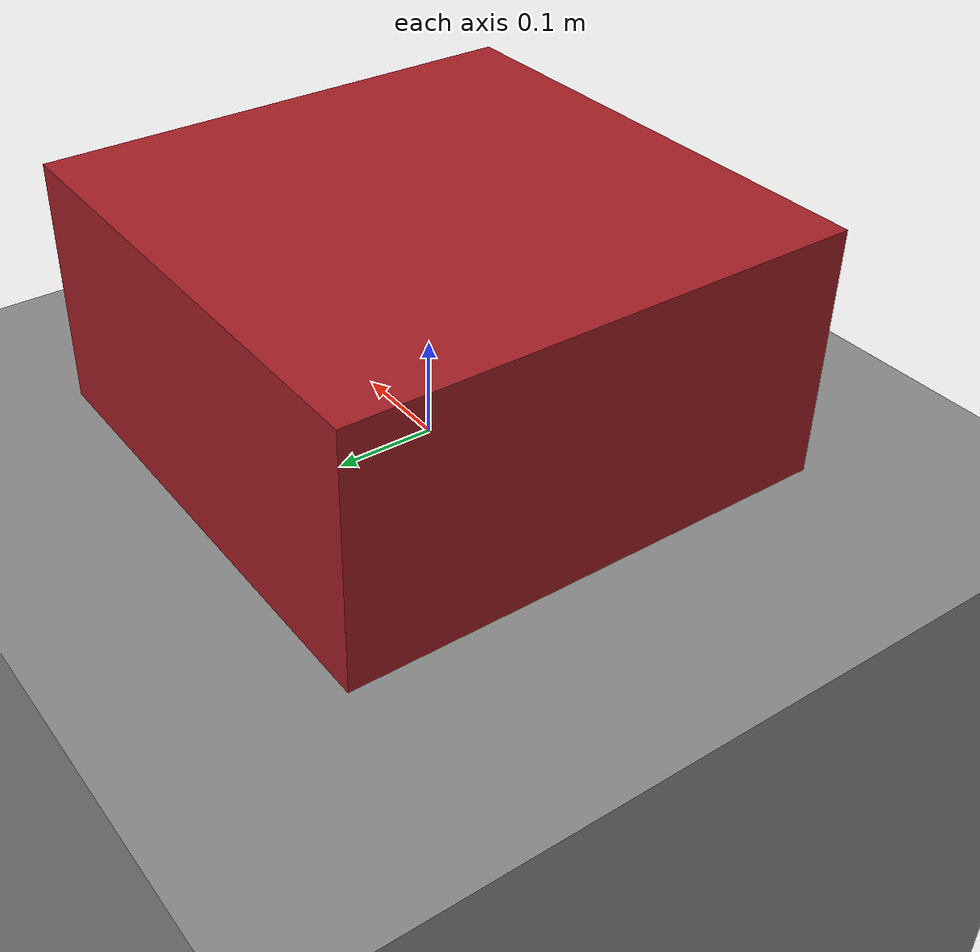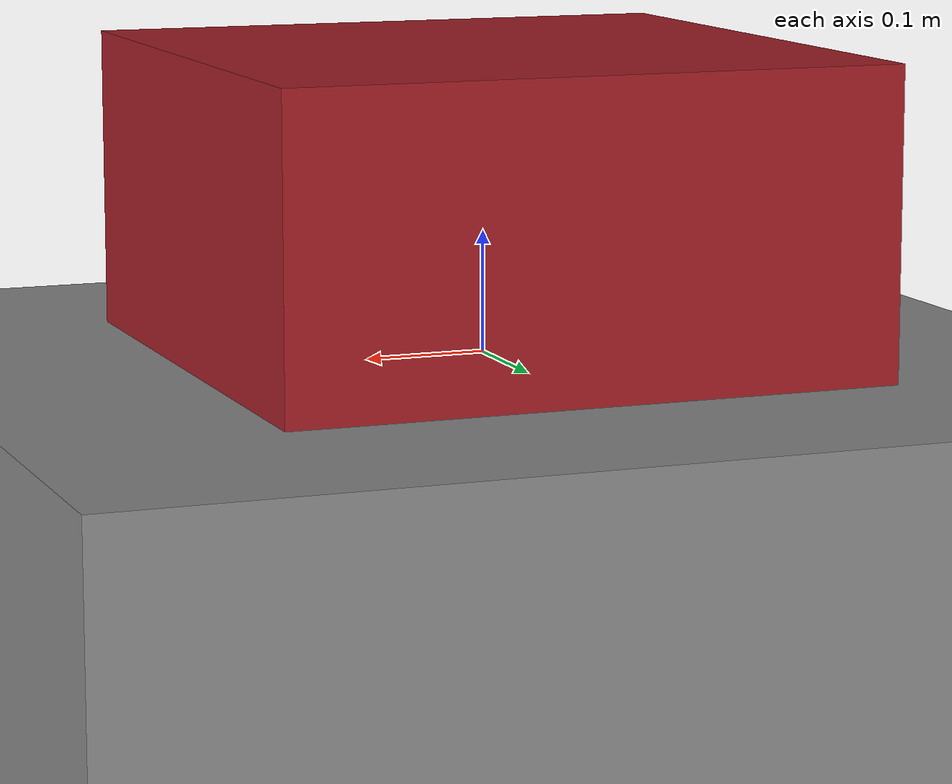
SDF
<?xml version='1.0'?>

<sdf version='1.6'>
  <model name='RaibertHopper2D'>
    <link name='ground'>
      <pose frame=''>0 0 -5 0 0 0</pose>
      <inertial>
        <pose frame=''>0 0 0 0 0 0</pose>
        <mass>0</mass>
        <inertia>
          <ixx>0</ixx>
          <ixy>0</ixy>
          <ixz>0</ixz>
          <iyy>0</iyy>
          <iyz>0</iyz>
          <izz>0</izz>
        </inertia>
      </inertial>
      <collision name='ground_collision'>
        <pose frame=''>0 0 0 0 0 0</pose>
        <geometry>
          <box>
            <size>100.0 100.0 10.0</size>
          </box>
        </geometry>
      </collision>
      <visual name='ground_visual'>
        <pose frame=''>0 0 0 0 0 0</pose>
        <geometry>
          <box>
            <size>100.0 100.0 10.0</size>
          </box>
        </geometry>
        <material>
          <diffuse>0.54 0.54 0.54 0.9</diffuse>
        </material>
      </visual>
    </link>

    <link name='body'>
      <pose frame=''>0 0 0 0 0 0</pose>
      <inertial>
        <pose frame=''>0 0 0 0 0 0</pose>
        <mass>1.0</mass>
        <inertia>
          <ixx>1.0</ixx>
          <ixy>0</ixy>
          <ixz>0</ixz>
          <iyy>1.0</iyy>
          <iyz>0</iyz>
          <izz>1.0</izz>
        </inertia>
      </inertial>

      <visual name='body_visual'>
        <pose frame=''>0 0 0 0 0 0</pose>
        <geometry>
          <box>
            <size>.5 .5 .5</size>
          </box>
        </geometry>
        <material>
          <diffuse>0.64 0.12 0.15 0.9</diffuse>
        </material>
      </visual>

      <collision name='body_collision'>
        <pose frame=''>0 0 0 0 0 0</pose>
        <geometry>
          <box>
            <size>.5 .5 .5</size>
          </box>
        </geometry>
      </collision>

    </link>

  </model>
</sdf>
